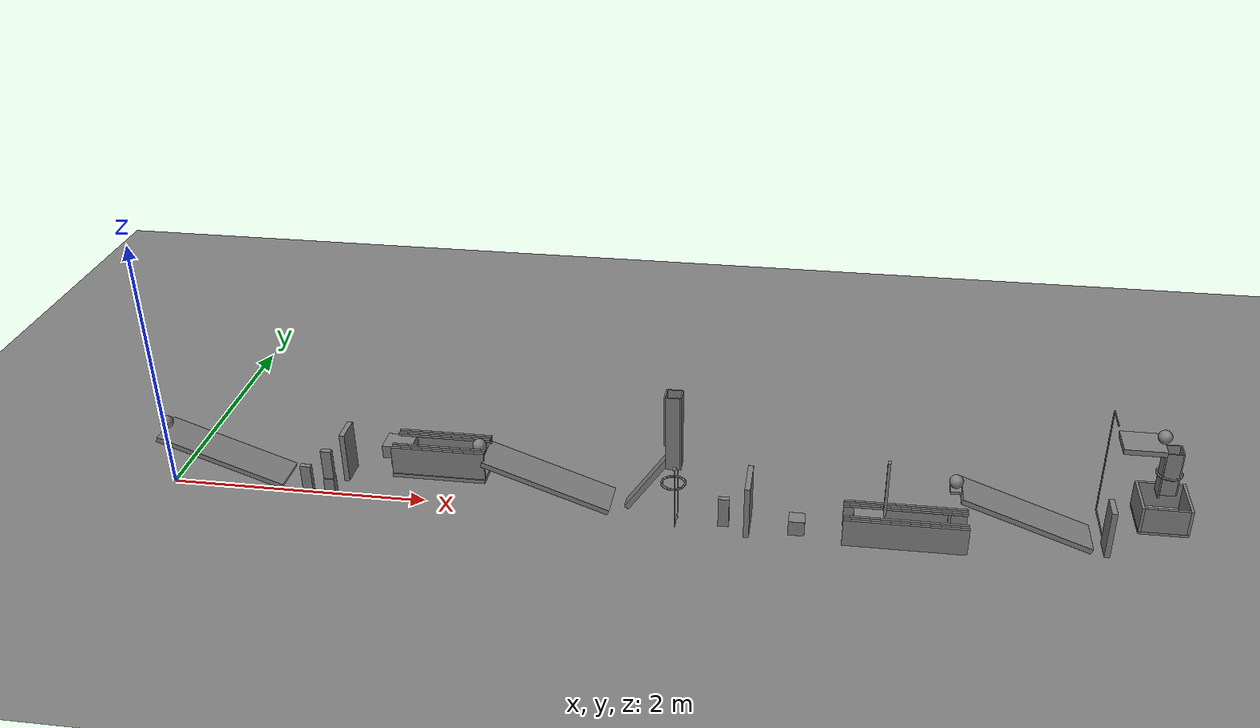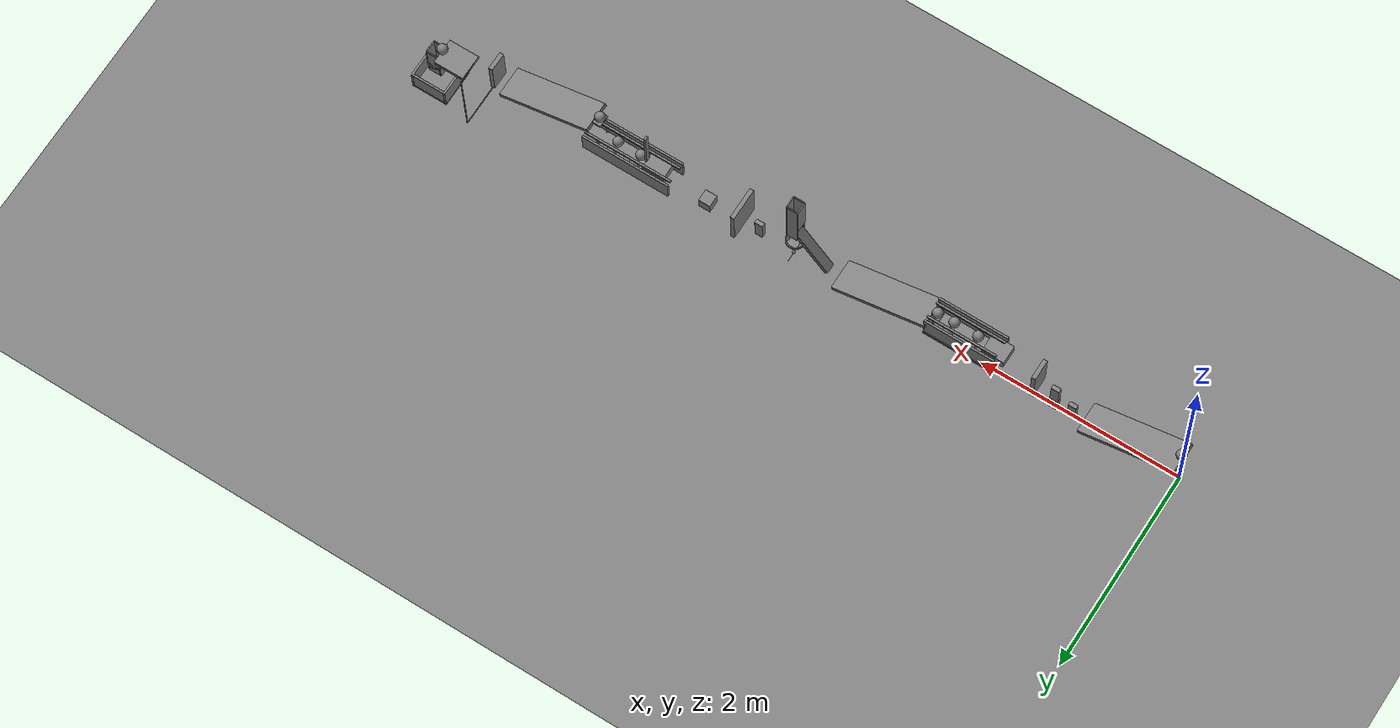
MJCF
<mujoco model="revised_gravity_chain_with_bearing_guides">
  <compiler angle="radian"/>
  <option timestep="0.002"/>
  <worldbody>
    <geom name="floor" type="plane" size="20 20 0.1" friction="0.7 0 0"/>
    <body name="ramp1">
      <geom name="ramp1" type="box" pos="0.469847 0 0.302216" size="0.5 0.15 0.02" euler="0 0.349066 0" friction="0.7 0 0" solref="0.01 1"/>
    </body>
    <body name="ball1" pos="0.0239414 0 0.539004">
      <freejoint/>
      <geom name="ball1" type="sphere" pos="0 0 0" size="0.05" mass="0.2" condim="6" friction="0.7 0 0" solref="0.01 1"/>
    </body>
    <body name="domino1" pos="1.07969 0 0.12">
      <freejoint/>
      <geom name="domino1" type="box" pos="0 0 0" size="0.04 0.02 0.12" mass="0.25" friction="0.7 0 0" solref="0.01 1"/>
    </body>
    <body name="domino2 support">
      <geom name="domino2 support" type="box" pos="1.25969 0 0.075" size="0.04 0.03 0.075" friction="0.7 0 0" solref="0.01 1"/>
    </body>
    <body name="domino2" pos="1.25969 0 0.27">
      <freejoint/>
      <geom name="domino2" type="box" pos="0 0 0" size="0.04 0.02 0.12" mass="0.25" friction="0.7 0 0" solref="0.01 1"/>
    </body>
    <body name="flap1" pos="1.43969 0 0.2">
      <joint name="flap1_hinge" type="hinge" pos="0 0 0" axis="0 1 0" limited="true" range="0 1.13446" damping="0.04"/>
      <geom name="flap1" type="box" pos="0 0 0.2" size="0.02 0.1 0.2" mass="0.3" friction="0.7 0 0" solref="0.01 1"/>
    </body>
    <body name="cart1 track">
      <geom name="cart1 track" type="box" pos="2.17 0 0.315" size="0.35 0.14 0.015" friction="0.7 0 0" solref="0.01 1"/>
    </body>
    <body name="cart1 left guide">
      <geom name="cart1 left guide" type="box" pos="2.17 0.122 0.44" size="0.35 0.01 0.11" friction="0.7 0 0" solref="0.01 1"/>
    </body>
    <body name="cart1 right guide">
      <geom name="cart1 right guide" type="box" pos="2.17 -0.122 0.44" size="0.35 0.01 0.11" friction="0.7 0 0" solref="0.01 1"/>
    </body>
    <body name="cart1 left roof guide">
      <geom name="cart1 left roof guide" type="box" pos="2.17 0.075 0.541" size="0.35 0.01 0.01" friction="0.7 0 0" solref="0.01 1"/>
    </body>
    <body name="cart1 right roof guide">
      <geom name="cart1 right roof guide" type="box" pos="2.17 -0.075 0.541" size="0.35 0.01 0.01" friction="0.7 0 0" solref="0.01 1"/>
    </body>
    <body name="cart1 left bearings1" pos="1.84 0.06 0.38">
      <freejoint/>
      <geom name="cart1 left bearings1" type="sphere" pos="0 0 0" size="0.05" mass="0.2" condim="6" friction="0.7 0 0" solref="0.01 1"/>
    </body>
    <body name="cart1 left bearings2" pos="2.08 0.06 0.38">
      <freejoint/>
      <geom name="cart1 left bearings2" type="sphere" pos="0 0 0" size="0.05" mass="0.2" condim="6" friction="0.7 0 0" solref="0.01 1"/>
    </body>
    <body name="cart1 left bearings3" pos="2.32 0.06 0.38">
      <freejoint/>
      <geom name="cart1 left bearings3" type="sphere" pos="0 0 0" size="0.05" mass="0.2" condim="6" friction="0.7 0 0" solref="0.01 1"/>
    </body>
    <body name="cart1 right bearings1" pos="1.84 -0.06 0.38">
      <freejoint/>
      <geom name="cart1 right bearings1" type="sphere" pos="0 0 0" size="0.05" mass="0.2" condim="6" friction="0.7 0 0" solref="0.01 1"/>
    </body>
    <body name="cart1 right bearings2" pos="2.08 -0.06 0.38">
      <freejoint/>
      <geom name="cart1 right bearings2" type="sphere" pos="0 0 0" size="0.05" mass="0.2" condim="6" friction="0.7 0 0" solref="0.01 1"/>
    </body>
    <body name="cart1 right bearings3" pos="2.32 -0.06 0.38">
      <freejoint/>
      <geom name="cart1 right bearings3" type="sphere" pos="0 0 0" size="0.05" mass="0.2" condim="6" friction="0.7 0 0" solref="0.01 1"/>
    </body>
    <body name="cart1 front bearing" pos="1.93 0 0.38">
      <freejoint/>
      <geom name="cart1 front bearing" type="sphere" pos="0 0 0" size="0.05" mass="0.2" condim="6" friction="0.7 0 0" solref="0.01 1"/>
    </body>
    <body name="cart1" pos="1.85 0 0.48">
      <freejoint/>
      <geom name="cart1" type="box" pos="0 0 0" size="0.11 0.09 0.05" mass="0.5" friction="0.7 0 0" solref="0.01 1"/>
    </body>
    <body name="cart1 left end stop">
      <geom name="cart1 left end stop" type="box" pos="2.46 0.075 0.48" size="0.01 0.01 0.05" friction="0.7 0 0" solref="0.01 1"/>
    </body>
    <body name="cart1 right end stop">
      <geom name="cart1 right end stop" type="box" pos="2.46 -0.075 0.48" size="0.01 0.01 0.05" friction="0.7 0 0" solref="0.01 1"/>
    </body>
    <body name="ramp2">
      <geom name="ramp2" type="box" pos="2.96838 0 0.302216" size="0.5 0.15 0.02" euler="0 0.349066 0" friction="0.7 0 0" solref="0.01 1"/>
    </body>
    <body name="ball2 starting pad">
      <geom name="ball2 starting pad" type="box" pos="2.45853 0 0.48202" size="0.04 0.06 0.01" friction="0.7 0 0" solref="0.01 1"/>
    </body>
    <body name="ball2" pos="2.45853 0 0.54202">
      <freejoint/>
      <geom name="ball2" type="sphere" pos="0 0 0" size="0.05" mass="0.2" condim="6" friction="0.7 0 0" solref="0.01 1"/>
    </body>
    <body name="lever1" pos="3.7303 0 0.365746">
      <joint name="lever1_hinge" type="hinge" pos="0 0 0" axis="0 1 0" limited="true" range="-0.785398 0" damping="0.04"/>
      <geom name="lever1" type="box" pos="0 0 -5e-07" size="0.3 0.05 0.02" euler="0 -0.959931 0" mass="0.499" friction="0.7 0 0" solref="0.01 1"/>
      <geom name="lever1 scoop" type="box" pos="0.172073 0 0.270745" size="0.045 0.05 0.005" mass="0.001" friction="0.7 0 0" solref="0.01 1"/>
    </body>
    <body name="ball3" pos="3.90237 0 0.691491">
      <freejoint/>
      <geom name="ball3" type="sphere" pos="0 0 0" size="0.05" mass="0.2" condim="6" friction="0.7 0 0" solref="0.01 1"/>
    </body>
    <body name="ball3 rear guide">
      <geom name="ball3 rear guide" type="box" pos="3.84537 0 0.9" size="0.005 0.06 0.2" friction="0.7 0 0" solref="0.01 1"/>
    </body>
    <body name="ball3 front guide">
      <geom name="ball3 front guide" type="box" pos="3.95937 0 0.8" size="0.005 0.06 0.3" friction="0.7 0 0" solref="0.01 1"/>
    </body>
    <body name="ball3 left guide">
      <geom name="ball3 left guide" type="box" pos="3.90237 0.057 0.8" size="0.052 0.005 0.3" friction="0.7 0 0" solref="0.01 1"/>
    </body>
    <body name="ball3 right guide">
      <geom name="ball3 right guide" type="box" pos="3.90237 -0.057 0.8" size="0.052 0.005 0.3" friction="0.7 0 0" solref="0.01 1"/>
    </body>
    <body name="ring1">
      <geom name="ring1_00" type="capsule" size="0.008" fromto="3.99037 0 0.341491 3.98368 0.0336761 0.341491" friction="0.7 0 0" solref="0.01 1"/>
      <geom name="ring1_01" type="capsule" size="0.008" fromto="3.98368 0.0336761 0.341491 3.9646 0.0622254 0.341491" friction="0.7 0 0" solref="0.01 1"/>
      <geom name="ring1_02" type="capsule" size="0.008" fromto="3.9646 0.0622254 0.341491 3.93605 0.0813014 0.341491" friction="0.7 0 0" solref="0.01 1"/>
      <geom name="ring1_03" type="capsule" size="0.008" fromto="3.93605 0.0813014 0.341491 3.90237 0.088 0.341491" friction="0.7 0 0" solref="0.01 1"/>
      <geom name="ring1_04" type="capsule" size="0.008" fromto="3.90237 0.088 0.341491 3.8687 0.0813014 0.341491" friction="0.7 0 0" solref="0.01 1"/>
      <geom name="ring1_05" type="capsule" size="0.008" fromto="3.8687 0.0813014 0.341491 3.84015 0.0622254 0.341491" friction="0.7 0 0" solref="0.01 1"/>
      <geom name="ring1_06" type="capsule" size="0.008" fromto="3.84015 0.0622254 0.341491 3.82107 0.0336761 0.341491" friction="0.7 0 0" solref="0.01 1"/>
      <geom name="ring1_07" type="capsule" size="0.008" fromto="3.82107 0.0336761 0.341491 3.81437 1.07769e-17 0.341491" friction="0.7 0 0" solref="0.01 1"/>
      <geom name="ring1_08" type="capsule" size="0.008" fromto="3.81437 1.07769e-17 0.341491 3.82107 -0.0336761 0.341491" friction="0.7 0 0" solref="0.01 1"/>
      <geom name="ring1_09" type="capsule" size="0.008" fromto="3.82107 -0.0336761 0.341491 3.84015 -0.0622254 0.341491" friction="0.7 0 0" solref="0.01 1"/>
      <geom name="ring1_10" type="capsule" size="0.008" fromto="3.84015 -0.0622254 0.341491 3.8687 -0.0813014 0.341491" friction="0.7 0 0" solref="0.01 1"/>
      <geom name="ring1_11" type="capsule" size="0.008" fromto="3.8687 -0.0813014 0.341491 3.90237 -0.088 0.341491" friction="0.7 0 0" solref="0.01 1"/>
      <geom name="ring1_12" type="capsule" size="0.008" fromto="3.90237 -0.088 0.341491 3.93605 -0.0813014 0.341491" friction="0.7 0 0" solref="0.01 1"/>
      <geom name="ring1_13" type="capsule" size="0.008" fromto="3.93605 -0.0813014 0.341491 3.9646 -0.0622254 0.341491" friction="0.7 0 0" solref="0.01 1"/>
      <geom name="ring1_14" type="capsule" size="0.008" fromto="3.9646 -0.0622254 0.341491 3.98368 -0.0336761 0.341491" friction="0.7 0 0" solref="0.01 1"/>
      <geom name="ring1_15" type="capsule" size="0.008" fromto="3.98368 -0.0336761 0.341491 3.99037 -2.15538e-17 0.341491" friction="0.7 0 0" solref="0.01 1"/>
    </body>
    <body name="pendulum1" pos="3.92237 0 0.529644">
      <joint name="pendulum_hinge" type="hinge" pos="0 0 0" axis="0 1 0" limited="true" range="-0.698132 0" damping="0.04"/>
      <geom name="pendulum1_bob" type="sphere" pos="0 0 -0.5" size="0.015" mass="0.01" friction="0.7 0 0" solref="0.01 1"/>
      <geom name="pendulum1_left_leg" type="capsule" size="0.0025" fromto="0 0.1 0 0 0.1 -0.515" mass="0.0195" friction="0.7 0 0" solref="0.01 1"/>
      <geom name="pendulum1_right_leg" type="capsule" size="0.0025" fromto="0 -0.1 0 0 -0.1 -0.515" mass="0.0195" friction="0.7 0 0" solref="0.01 1"/>
      <geom name="pendulum1_lower_crossbar" type="capsule" size="0.0025" fromto="0 0.1 -0.515 0 -0.1 -0.515" mass="0.001" friction="0.7 0 0" solref="0.01 1"/>
      <geom name="pendulum1_left_pivot_ballast" type="sphere" pos="0 0.1 0" size="0.015" mass="0.15" friction="0.7 0 0" solref="0.01 1"/>
      <geom name="pendulum1_right_pivot_ballast" type="sphere" pos="0 -0.1 0" size="0.015" mass="0.15" friction="0.7 0 0" solref="0.01 1"/>
    </body>
    <body name="domino3" pos="4.27597 0 0.12">
      <freejoint/>
      <geom name="domino3" type="box" pos="0 0 0" size="0.04 0.02 0.12" mass="0.25" friction="0.7 0 0" solref="0.01 1"/>
    </body>
    <body name="door1" pos="4.45597 0 0.02">
      <joint name="door1_hinge" type="hinge" pos="0 0 0" axis="0 1 0" limited="true" range="0 1.22173" damping="0.04"/>
      <geom name="door1" type="box" pos="0 0 0.21" size="0.02 0.16 0.21" mass="0.45" friction="0.7 0 0" solref="0.01 1"/>
    </body>
    <body name="block1" pos="4.81597 0 0.06">
      <freejoint/>
      <geom name="block1" type="box" pos="0 0 0" size="0.06 0.06 0.06" mass="0.35" friction="0.7 0 0" solref="0.01 1"/>
    </body>
    <body name="cart2 left guide">
      <geom name="cart2 left guide" type="box" pos="5.6 0.122 0.11" size="0.45 0.01 0.11" friction="0.7 0 0" solref="0.01 1"/>
    </body>
    <body name="cart2 right guide">
      <geom name="cart2 right guide" type="box" pos="5.6 -0.122 0.11" size="0.45 0.01 0.11" friction="0.7 0 0" solref="0.01 1"/>
    </body>
    <body name="cart2 left roof guide">
      <geom name="cart2 left roof guide" type="box" pos="5.6 0.075 0.211" size="0.45 0.01 0.01" friction="0.7 0 0" solref="0.01 1"/>
    </body>
    <body name="cart2 right roof guide">
      <geom name="cart2 right roof guide" type="box" pos="5.6 -0.075 0.211" size="0.45 0.01 0.01" friction="0.7 0 0" solref="0.01 1"/>
    </body>
    <body name="cart2 left bearings1" pos="5.31597 0.06 0.05">
      <freejoint/>
      <geom name="cart2 left bearings1" type="sphere" pos="0 0 0" size="0.05" mass="0.2" condim="6" friction="0.7 0 0" solref="0.01 1"/>
    </body>
    <body name="cart2 left bearings2" pos="5.55597 0.06 0.05">
      <freejoint/>
      <geom name="cart2 left bearings2" type="sphere" pos="0 0 0" size="0.05" mass="0.2" condim="6" friction="0.7 0 0" solref="0.01 1"/>
    </body>
    <body name="cart2 left bearings3" pos="5.79597 0.06 0.05">
      <freejoint/>
      <geom name="cart2 left bearings3" type="sphere" pos="0 0 0" size="0.05" mass="0.2" condim="6" friction="0.7 0 0" solref="0.01 1"/>
    </body>
    <body name="cart2 right bearings1" pos="5.31597 -0.06 0.05">
      <freejoint/>
      <geom name="cart2 right bearings1" type="sphere" pos="0 0 0" size="0.05" mass="0.2" condim="6" friction="0.7 0 0" solref="0.01 1"/>
    </body>
    <body name="cart2 right bearings2" pos="5.55597 -0.06 0.05">
      <freejoint/>
      <geom name="cart2 right bearings2" type="sphere" pos="0 0 0" size="0.05" mass="0.2" condim="6" friction="0.7 0 0" solref="0.01 1"/>
    </body>
    <body name="cart2 right bearings3" pos="5.79597 -0.06 0.05">
      <freejoint/>
      <geom name="cart2 right bearings3" type="sphere" pos="0 0 0" size="0.05" mass="0.2" condim="6" friction="0.7 0 0" solref="0.01 1"/>
    </body>
    <body name="cart2 front bearing" pos="5.40597 0 0.05">
      <freejoint/>
      <geom name="cart2 front bearing" type="sphere" pos="0 0 0" size="0.05" mass="0.2" condim="6" friction="0.7 0 0" solref="0.01 1"/>
    </body>
    <body name="cart2" pos="5.33597 0 0.15">
      <freejoint/>
      <geom name="cart2" type="box" pos="0 0 0" size="0.11 0.09 0.05" mass="0.499" friction="0.7 0 0" solref="0.01 1"/>
      <geom name="cart2 pusher" type="box" pos="0.11 0 0.28" size="0.01 0.02 0.23" mass="0.001" friction="0.7 0 0" solref="0.01 1"/>
    </body>
    <body name="cart2 left end stop">
      <geom name="cart2 left end stop" type="box" pos="5.91597 0.075 0.15" size="0.01 0.01 0.05" friction="0.7 0 0" solref="0.01 1"/>
    </body>
    <body name="cart2 right end stop">
      <geom name="cart2 right end stop" type="box" pos="5.91597 -0.075 0.15" size="0.01 0.01 0.05" friction="0.7 0 0" solref="0.01 1"/>
    </body>
    <body name="ramp3">
      <geom name="ramp3" type="box" pos="6.43582 0 0.302216" size="0.5 0.15 0.02" euler="0 0.349066 0" friction="0.7 0 0" solref="0.01 1"/>
    </body>
    <body name="ball4 starting pad">
      <geom name="ball4 starting pad" type="box" pos="5.92597 0 0.48202" size="0.04 0.06 0.01" friction="0.7 0 0" solref="0.01 1"/>
    </body>
    <body name="ball4" pos="5.92597 0 0.54202">
      <freejoint/>
      <geom name="ball4" type="sphere" pos="0 0 0" size="0.05" mass="0.2" condim="6" friction="0.7 0 0" solref="0.01 1"/>
    </body>
    <body name="flap2" pos="7.02567 0 0.05">
      <joint name="flap2_hinge" type="hinge" pos="0 0 0" axis="0 1 0" limited="true" range="0 1.0472" damping="0.04"/>
      <geom name="flap2" type="box" pos="0 0 0.19" size="0.02 0.09 0.19" mass="0.278" friction="0.7 0 0" solref="0.01 1"/>
      <geom name="flap2 connector" type="capsule" size="0.005" fromto="0 0 0 0 0.5 1.38778e-17" mass="0.0005" friction="0.7 0 0" solref="0.01 1"/>
      <geom name="flap2 extension" type="capsule" size="0.005" fromto="0 0.5 1.38778e-17 0 0.5 0.86539" mass="0.001" friction="0.7 0 0" solref="0.01 1"/>
      <geom name="flap2 striker" type="capsule" size="0.005" fromto="0 0.5 0.86539 0 0.3 0.86539" mass="0.0005" friction="0.7 0 0" solref="0.01 1"/>
    </body>
    <body name="shelf1">
      <geom name="shelf1" type="box" pos="7.21567 0.3 0.78" size="0.15 0.125 0.02" friction="0.7 0 0" solref="0.01 1"/>
    </body>
    <body name="ball5" pos="7.35567 0.3 0.85">
      <freejoint/>
      <geom name="ball5" type="sphere" pos="0 0 0" size="0.05" mass="0.2" condim="6" friction="0.7 0 0" solref="0.01 1"/>
    </body>
    <body name="ball5 front guide">
      <geom name="ball5 front guide" type="box" pos="7.49566 0.3 0.575" size="0.005 0.06 0.175" friction="0.7 0 0" solref="0.01 1"/>
    </body>
    <body name="ball5 rear guide">
      <geom name="ball5 rear guide" type="box" pos="7.37566 0.3 0.56" size="0.005 0.06 0.19" friction="0.7 0 0" solref="0.01 1"/>
    </body>
    <body name="ball5 left guide">
      <geom name="ball5 left guide" type="box" pos="7.43567 0.36 0.575" size="0.055 0.005 0.175" friction="0.7 0 0" solref="0.01 1"/>
    </body>
    <body name="ball5 right guide">
      <geom name="ball5 right guide" type="box" pos="7.43567 0.24 0.575" size="0.055 0.005 0.175" friction="0.7 0 0" solref="0.01 1"/>
    </body>
    <body name="ring2">
      <geom name="ring2_00" type="capsule" size="0.008" fromto="7.52367 0.3 0.55 7.51697 0.333676 0.55" friction="0.7 0 0" solref="0.01 1"/>
      <geom name="ring2_01" type="capsule" size="0.008" fromto="7.51697 0.333676 0.55 7.49789 0.362225 0.55" friction="0.7 0 0" solref="0.01 1"/>
      <geom name="ring2_02" type="capsule" size="0.008" fromto="7.49789 0.362225 0.55 7.46934 0.381301 0.55" friction="0.7 0 0" solref="0.01 1"/>
      <geom name="ring2_03" type="capsule" size="0.008" fromto="7.46934 0.381301 0.55 7.43567 0.388 0.55" friction="0.7 0 0" solref="0.01 1"/>
      <geom name="ring2_04" type="capsule" size="0.008" fromto="7.43567 0.388 0.55 7.40199 0.381301 0.55" friction="0.7 0 0" solref="0.01 1"/>
      <geom name="ring2_05" type="capsule" size="0.008" fromto="7.40199 0.381301 0.55 7.37344 0.362225 0.55" friction="0.7 0 0" solref="0.01 1"/>
      <geom name="ring2_06" type="capsule" size="0.008" fromto="7.37344 0.362225 0.55 7.35436 0.333676 0.55" friction="0.7 0 0" solref="0.01 1"/>
      <geom name="ring2_07" type="capsule" size="0.008" fromto="7.35436 0.333676 0.55 7.34767 0.3 0.55" friction="0.7 0 0" solref="0.01 1"/>
      <geom name="ring2_08" type="capsule" size="0.008" fromto="7.34767 0.3 0.55 7.35436 0.266324 0.55" friction="0.7 0 0" solref="0.01 1"/>
      <geom name="ring2_09" type="capsule" size="0.008" fromto="7.35436 0.266324 0.55 7.37344 0.237775 0.55" friction="0.7 0 0" solref="0.01 1"/>
      <geom name="ring2_10" type="capsule" size="0.008" fromto="7.37344 0.237775 0.55 7.40199 0.218699 0.55" friction="0.7 0 0" solref="0.01 1"/>
      <geom name="ring2_11" type="capsule" size="0.008" fromto="7.40199 0.218699 0.55 7.43567 0.212 0.55" friction="0.7 0 0" solref="0.01 1"/>
      <geom name="ring2_12" type="capsule" size="0.008" fromto="7.43567 0.212 0.55 7.46934 0.218699 0.55" friction="0.7 0 0" solref="0.01 1"/>
      <geom name="ring2_13" type="capsule" size="0.008" fromto="7.46934 0.218699 0.55 7.49789 0.237775 0.55" friction="0.7 0 0" solref="0.01 1"/>
      <geom name="ring2_14" type="capsule" size="0.008" fromto="7.49789 0.237775 0.55 7.51697 0.266324 0.55" friction="0.7 0 0" solref="0.01 1"/>
      <geom name="ring2_15" type="capsule" size="0.008" fromto="7.51697 0.266324 0.55 7.52367 0.3 0.55" friction="0.7 0 0" solref="0.01 1"/>
    </body>
    <body name="bin1">
      <geom name="bin1_base" type="box" pos="7.43567 0.3 0.14" size="0.18 0.18 0.01" friction="0.7 0 0" solref="0.01 1"/>
      <geom name="bin1_near_wall" type="box" pos="7.26567 0.3 0.25" size="0.01 0.18 0.1" friction="0.7 0 0" solref="0.01 1"/>
      <geom name="bin1_far_wall" type="box" pos="7.60567 0.3 0.25" size="0.01 0.18 0.1" friction="0.7 0 0" solref="0.01 1"/>
      <geom name="bin1_left_wall" type="box" pos="7.43567 0.47 0.25" size="0.16 0.01 0.1" friction="0.7 0 0" solref="0.01 1"/>
      <geom name="bin1_right_wall" type="box" pos="7.43567 0.13 0.25" size="0.16 0.01 0.1" friction="0.7 0 0" solref="0.01 1"/>
    </body>
  </worldbody>
  <keyframe>
    <key name="start" qpos="0.0239414 0 0.539004 1 0 0 0 1.07969 0 0.12 1 0 0 0 1.25969 0 0.27 1 0 0 0 0 1.84 0.06 0.38 1 0 0 0 2.08 0.06 0.38 1 0 0 0 2.32 0.06 0.38 1 0 0 0 1.84 -0.06 0.38 1 0 0 0 2.08 -0.06 0.38 1 0 0 0 2.32 -0.06 0.38 1 0 0 0 1.93 0 0.38 1 0 0 0 1.85 0 0.48 1 0 0 0 2.45853 0 0.54202 1 0 0 0 0 3.90237 0 0.691491 1 0 0 0 0 4.27597 0 0.12 1 0 0 0 0 4.81597 0 0.06 1 0 0 0 5.31597 0.06 0.05 1 0 0 0 5.55597 0.06 0.05 1 0 0 0 5.79597 0.06 0.05 1 0 0 0 5.31597 -0.06 0.05 1 0 0 0 5.55597 -0.06 0.05 1 0 0 0 5.79597 -0.06 0.05 1 0 0 0 5.40597 0 0.05 1 0 0 0 5.33597 0 0.15 1 0 0 0 5.92597 0 0.54202 1 0 0 0 0 7.35567 0.3 0.85 1 0 0 0" qvel="0 0 0 0 0 0 0 0 0 0 0 0 0 0 0 0 0 0 0 0 0 0 0 0 0 0 0 0 0 0 0 0 0 0 0 0 0 0 0 0 0 0 0 0 0 0 0 0 0 0 0 0 0 0 0 0 0 0 0 0 0 0 0 0 0 0 0 0 0 0 0 0 0 0 0 0 0 0 0 0 0 0 0 0 0 0 0 0 0 0 0 0 0 0 0 0 0 0 0 0 0 0 0 0 0 0 0 0 0 0 0 0 0 0 0 0 0 0 0 0 0 0 0 0 0 0 0 0 0 0 0 0 0 0 0 0 0 0 0 0 0 0 0 0 0 0 0 0 0 0 0 0 0 0 0"/>
  </keyframe>
</mujoco>
